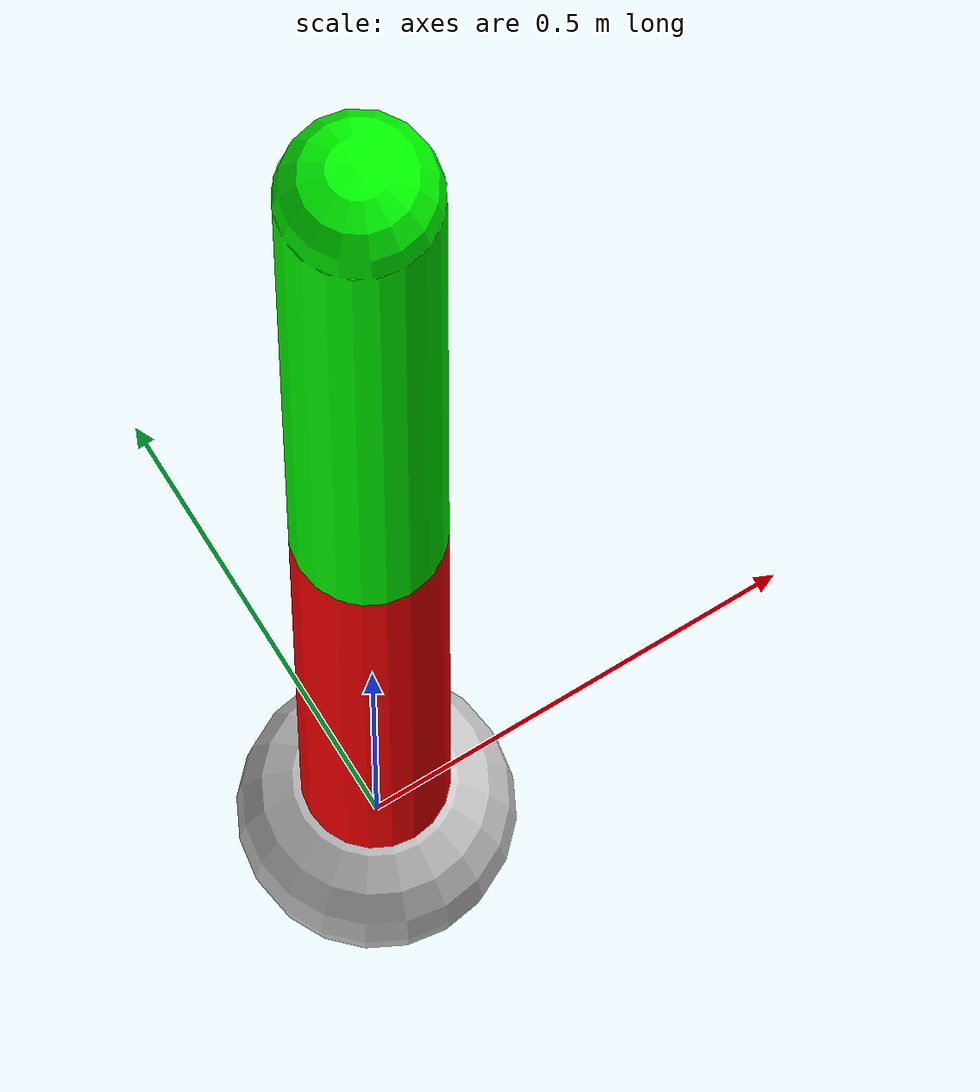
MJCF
<mujoco model="Double">
    <compiler angle="radian" />
    <option timestep = "0.002"
            gravity = "0 0 -9.81"
            integrator = "RK4"/>
    <worldbody>

        <body name="link1" pos = "0 0 2">

            <joint name = "top_hinge"
                    type = "hinge"
                    axis = "1 0 0"
                    damping = "-0.01"/>

            <geom type = "capsule"
                fromto = "0 0 0 0 0 -1"
                size = "0.08"
                rgba = "0 1 0 1"
                mass="1" />

            <body name="link2" pos = "0 0 -1">

                <joint name = "bottom_hinge"
                        type = "hinge"
                        axis = "1 0 0"
                        damping = "-0.01"/>

                <geom type = "capsule"
                    fromto = "0 0 0 0 0 -1"
                    size = "0.08"
                    rgba = "1 0 0 1"
                    mass="1" />

                <body name = "weight" pos = " 0 0 -1">
                    <geom type="sphere"
                    size="0.15"
                    rgba = "0.8 0.8 0.8 1"
                    mass = "9.99"/>
                </body>
            </body>
        </body>
    </worldbody>
</mujoco>
